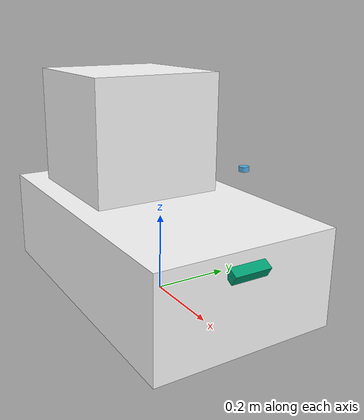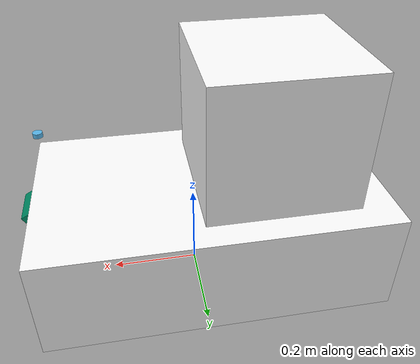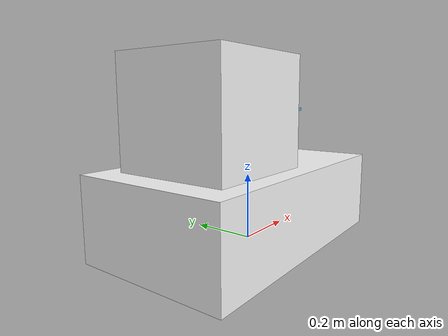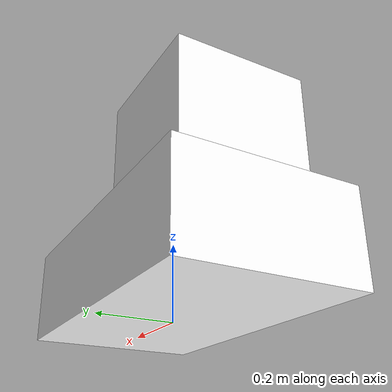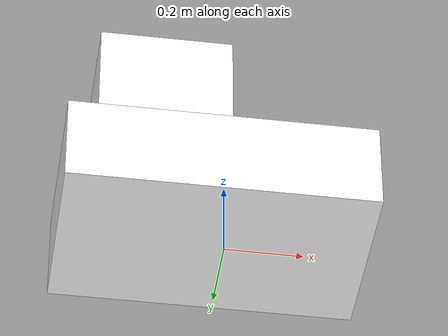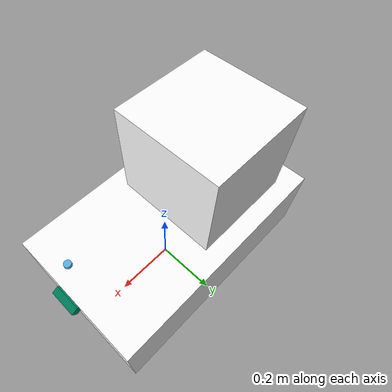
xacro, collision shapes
<?xml version="1.0" encoding="utf-8"?>
<robot
  name="ranger_xarm_base">
  <link
    name="box_link">
    <inertial>
      <origin
        xyz="-0.0601222055925797 -0.0451511006857657 0.224698709386034"
        rpy="0 0 0" />
      <mass
        value="16.3668889828692" />
      <inertia
        ixx="0.264013489019779"
        ixy="0.00217231977608618"
        ixz="5.81722561346725E-05"
        iyy="0.293366806551551"
        iyz="-0.000618019953303316"
        izz="0.359503103952166" />
    </inertial>
    <visual>
      <origin
        xyz="0 0 0"
        rpy="0 0 0" />
      <geometry>
        <mesh
          filename="package://ranger_xarm_base/meshes/2431_box_link_without_lift.STL" />
      </geometry>
      <material
        name="">
        <color
          rgba="1 1 1 1" />
      </material>
    </visual>
    <!-- Conservative primitives replace the detailed presentation mesh for
         stable self-collision and Isaac import. -->
    <collision name="lower_pedestal_collision">
      <origin xyz="-0.03 0 0.12" rpy="0 0 0" />
      <geometry>
        <box size="0.78 0.46 0.24" />
      </geometry>
    </collision>
    <collision name="lift_enclosure_collision">
      <origin xyz="-0.17 0 0.38" rpy="0 0 0" />
      <geometry>
        <box size="0.34 0.34 0.34" />
      </geometry>
    </collision>
  </link>

  <link name="lidar_link">
    <inertial>
      <origin xyz="0.0 0.0 0.0" rpy="0.0 0.0 0.0"/>
      <mass value="0.0"/>
      <inertia ixx="0.0" ixy="0.0" ixz="0.0" iyy="0.0" iyz="0.0" izz="0.0"/>
    </inertial>
    <visual name="">
      <origin xyz="0.0 0.0 0.0" rpy="0.0 0.0 0.0"/>
      <geometry>
        <cylinder radius="0.05" length="0.1"/>
      </geometry>
    </visual>
    <collision>
      <origin xyz="0.0 0.0 0.0" rpy="0.0 0.0 0.0"/>
      <geometry>
        <cylinder radius="0.01" length="0.01"/>
      </geometry>
    </collision>
  </link>

  <joint name="lidar_joint" type="fixed">
    <parent link="box_link"/>
    <child link="lidar_link"/>
    <origin xyz="0.318 0.00 0.393" rpy="0.0 0.0 0.0"/>
  </joint>

  <link name="cam2_link">
    <visual name="d435_body">
      <origin xyz="0.0043 -0.0175 0" rpy="1.5707963267948966 0 1.5707963267948966"/>
      <geometry>
        <mesh filename="package://realsense2_description/meshes/d435.dae"/>
      </geometry>
    </visual>
    <collision name="d435_body_collision">
      <origin xyz="0 -0.0175 0" rpy="0 0 0"/>
      <geometry>
        <box size="0.02505 0.090 0.025"/>
      </geometry>
    </collision>
    <inertial>
      <origin xyz="0 -0.0175 0" rpy="0 0 0"/>
      <mass value="0.072"/>
      <inertia ixx="0.00005325" ixy="0" ixz="0" iyy="0.00000751" iyz="0" izz="0.00005569"/>
    </inertial>
  </link>

  <joint name="cam2_mount_joint" type="fixed">
    <parent link="box_link"/>
    <child link="cam2_link"/>
    <origin xyz="0.369 0.0 0.197" rpy="0.0 0.52359878 0.0"/>
  </joint>

</robot>
